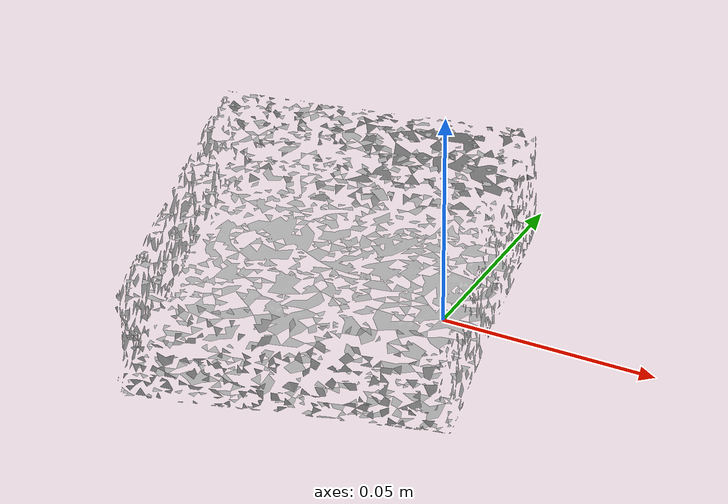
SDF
<?xml version='1.0'?>
<sdf version="1.4">
  <model name="gelatin_box">
    <static>false</static>
    <link name="link">
      <inertial>
        <pose>-0.02267551794293906 -0.007860203252540228 0.013877966045089096 -0.3812962283595558 -1.5653302217381688 -0.961483610330872</pose>
        <mass>0.0001730558194301085</mass>
        <inertia>
          <ixx>1.808808464126736e-07</ixx>
          <ixy>-1.4602785412432844e-25</ixy>
          <ixz>1.5848748448179987e-24</ixz>
          <iyy>1.1880213011661255e-07</iyy>
          <iyz>1.531563919376384e-23</iyz>
          <izz>8.422039755656733e-08</izz>
        </inertia>
      </inertial>
      <collision name="collision">
        <geometry>
          <mesh>
            <!-- Use a downsampled mesh for collisions -->
            <uri>model://009_gelatin_box/downsampled.obj</uri>
	        </mesh>
        </geometry>
        <surface>
      </surface>
      </collision>
      <visual name="visual">
        <geometry>
          <mesh>
            <uri>model://009_gelatin_box/google_16k/textured.obj</uri>
	        </mesh>
        </geometry>
        <material>
          <script>
            <uri>model://009_gelatin_box/gelatin_box.material</uri>
            <name>gelatin_box</name>
          </script>
        </material>
      </visual>
    </link>
  </model>
</sdf>
